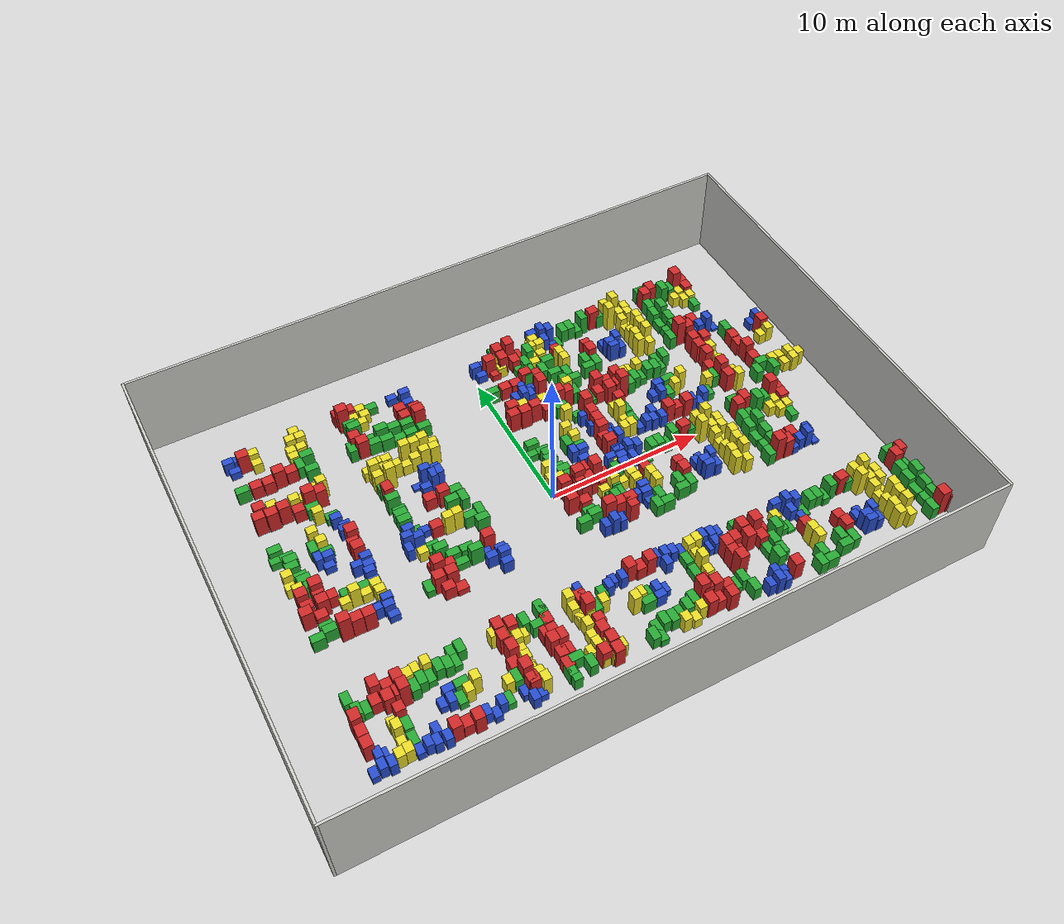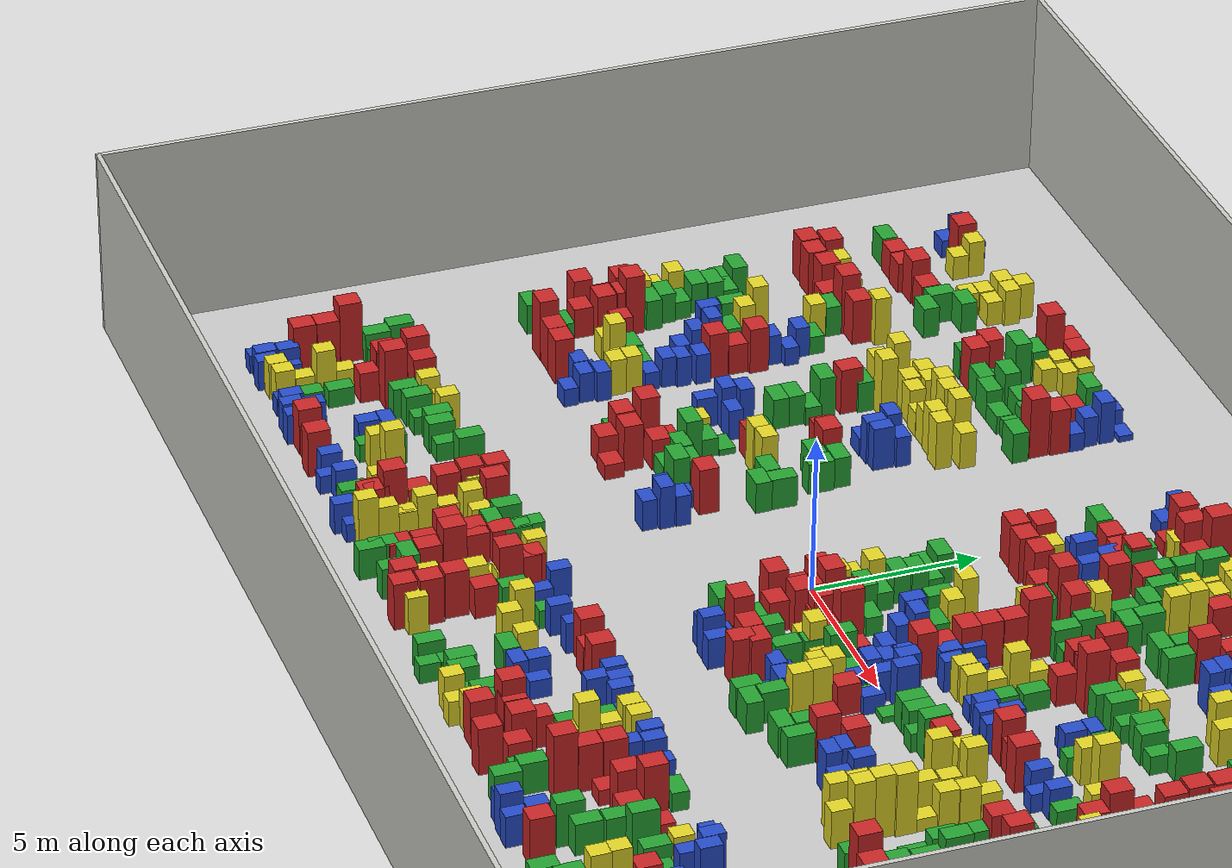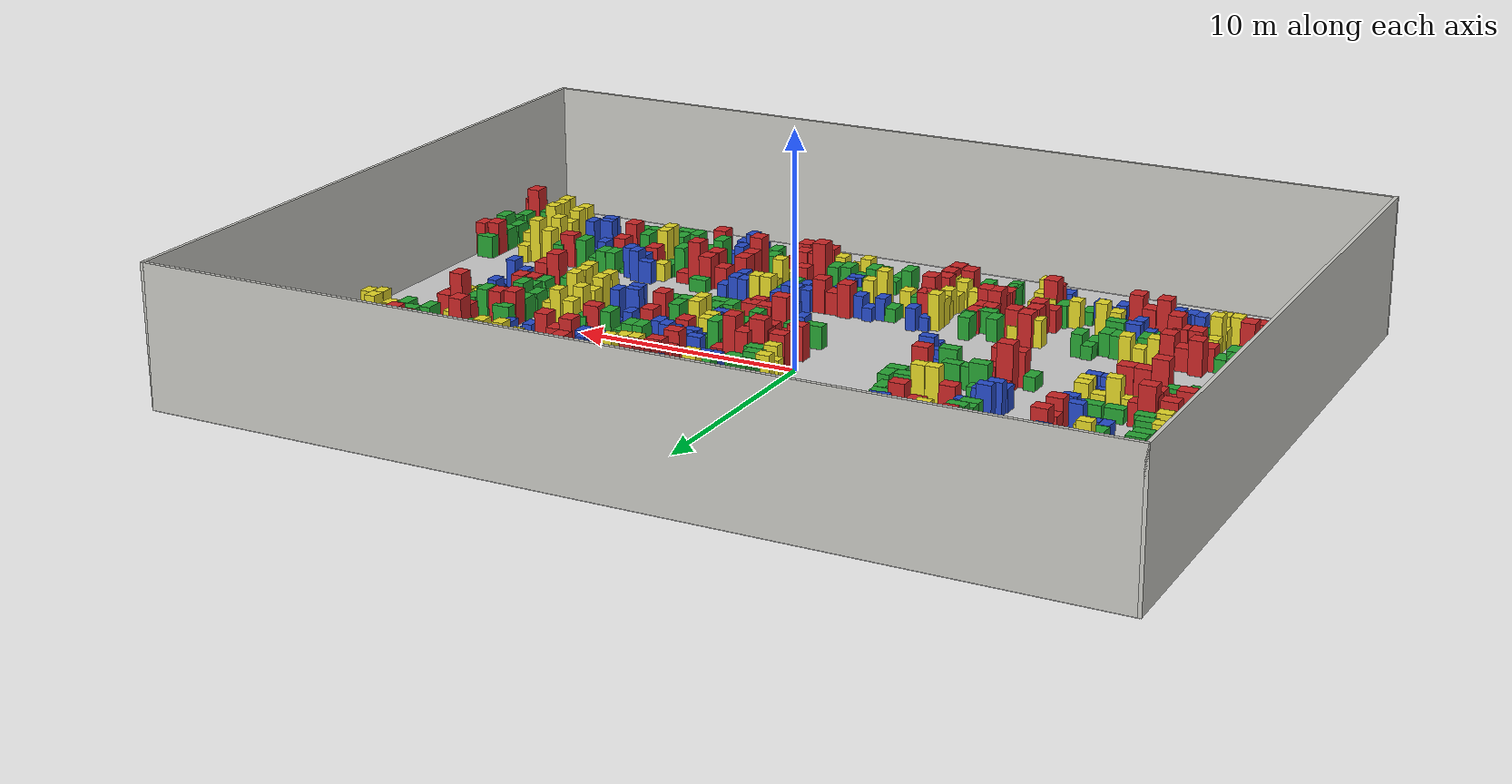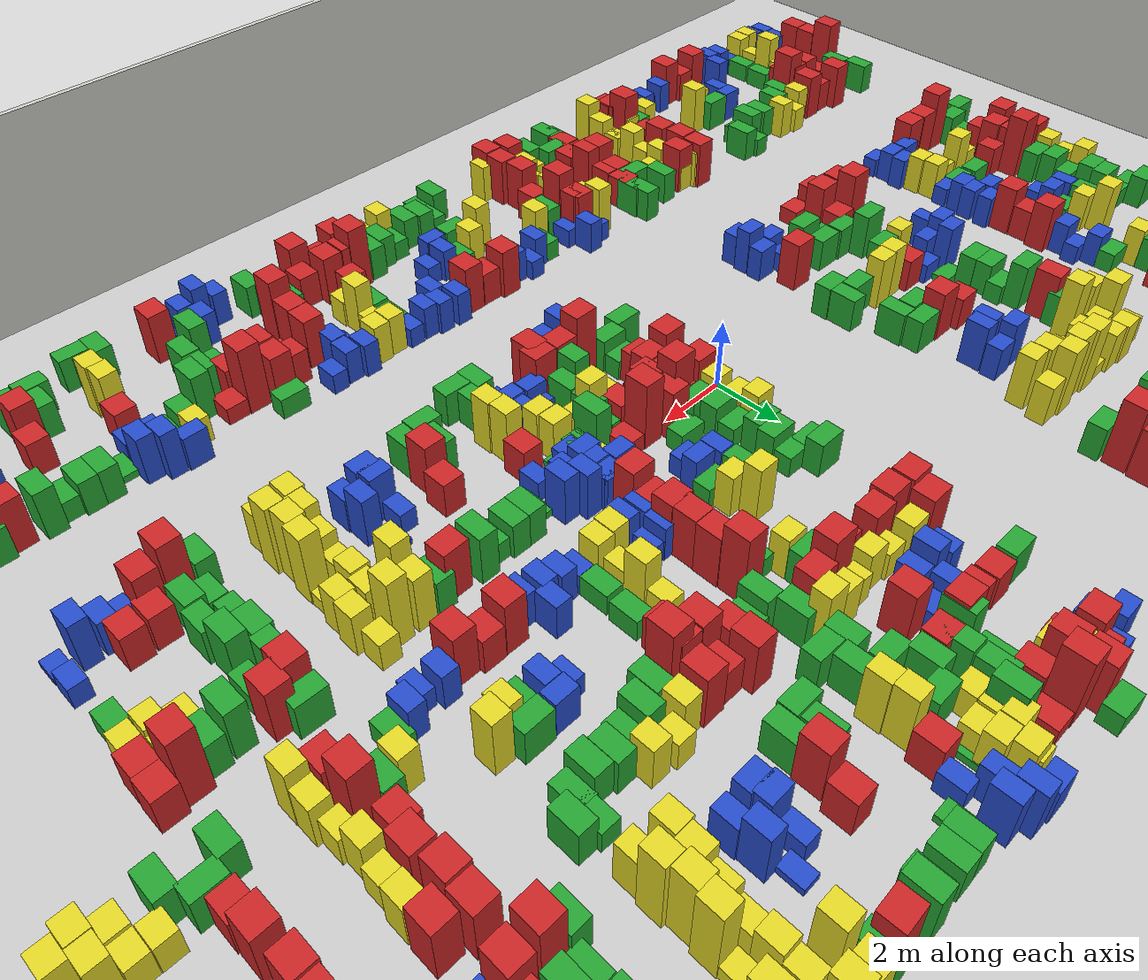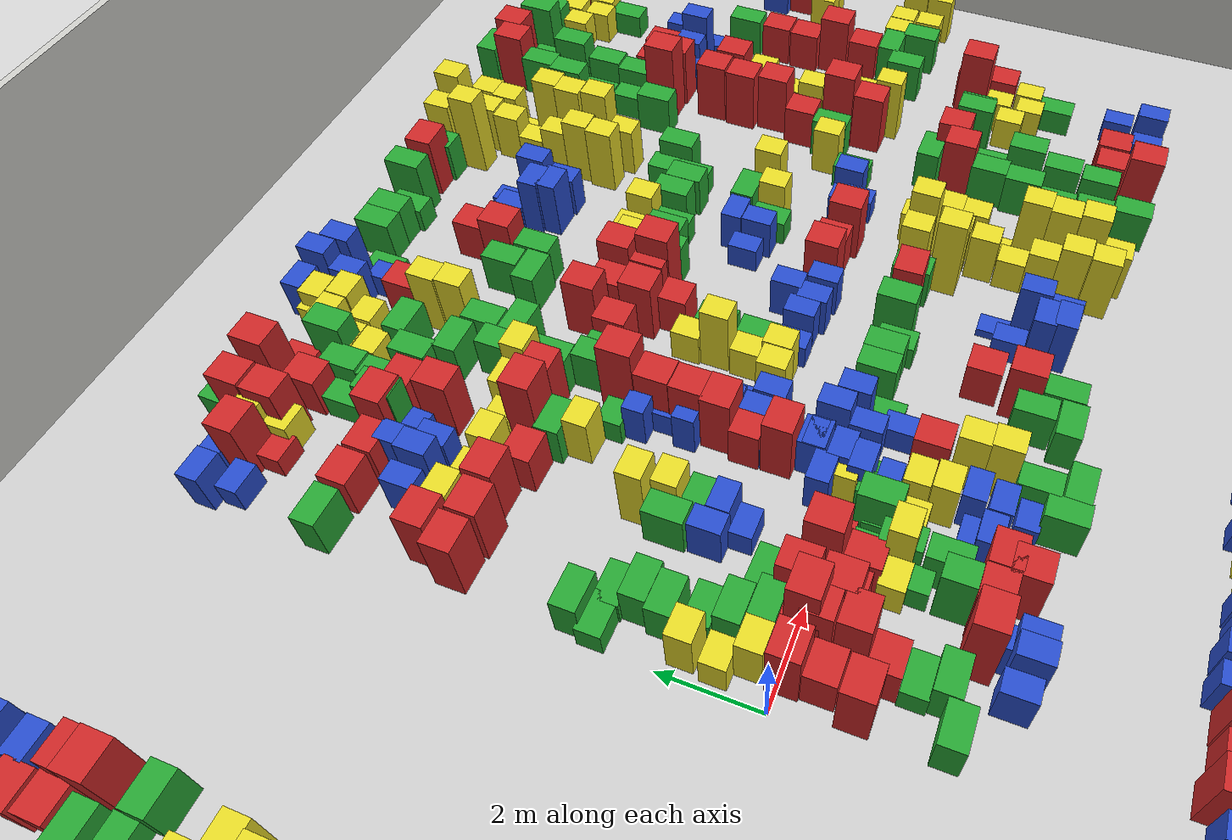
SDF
<?xml version="1.0" ?>
<sdf version="1.6">
  <world name="default">
    <include>
      <uri>model://sun</uri>
    </include>
    <include>
      <uri>model://factory_floor</uri>
    </include>
    <include>
      <uri>model://factory_outer_frame</uri>
    </include>
    <include>
      <uri>model://baggage_group_A</uri>
      <pose>0 0 0 0 0 0</pose>
    </include>
    <include>
      <uri>model://baggage_group_B</uri>
      <pose>0 0 0 0 0 0</pose>
    </include>
    <include>
      <uri>model://baggage_group_A</uri>
      <pose>16.4785 0 0 0 0 0</pose>
    </include>
    <include>
      <uri>model://baggage_group_B</uri>
      <pose>4.6868 2.7612 0 0 0 -1.57</pose>
    </include>
    <include>
      <uri>model://baggage_group_B</uri>
      <pose>4.7830 -8.4001 0 0 0 -1.57</pose>
    </include>
    <include>
      <uri>model://baggage_group_A</uri>
      <pose>-13.0905 -22.9885 0 0 0 -1.57</pose>
    </include>
    <include>
      <uri>model://baggage_group_A</uri>
      <pose>3.7331 4.6536 0 0 0 1.57</pose>
    </include>
    <include>
      <uri>model://baggage_group_A</uri>
      <pose>7.8453 -9.7033 0 0 0 -1.57</pose>
    </include>
    <include>
      <uri>model://baggage_group_B</uri>
      <pose>10.7910 -16.2892 0 0 0 -1.57</pose>
    </include>
  </world>
</sdf>

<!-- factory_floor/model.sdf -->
<sdf version="1.4">
   <model name="factory_floor">
      <static>true</static>
      <link name="link">
         <collision name="collision">
            <geometry>
               <plane>
                  <normal>0 0 1</normal>
                  <size>40 30</size>
               </plane>
            </geometry>
            <surface>
               <friction>
                  <ode>
                     <mu>100</mu>
                     <mu2>50</mu2>
                  </ode>
               </friction>
            </surface>
         </collision>
         <visual name="visual">
            <cast_shadows>false</cast_shadows>
            <geometry>
               <plane>
                  <normal>0 0 1</normal>
                  <size>40 30</size>
               </plane>
            </geometry>
            <material>
               <script>
                  <uri>model://factory_floor/materials/scripts/factory_floor.material</uri>
                  <name>FactoryFloor/Image</name>
               </script>
            </material>
         </visual>
      </link>
   </model>
</sdf>

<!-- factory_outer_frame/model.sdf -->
<sdf version='1.6'>
  <model name='factory_outer_frame'>
    <pose frame=''>0 0 0 0 -0 0</pose>
    <link name='Wall_0'>
      <collision name='Wall_0_Collision'>
        <geometry>
          <box>
            <size>30.15 0.15 6</size>
          </box>
        </geometry>
        <pose frame=''>0 0 3 0 -0 0</pose>
      </collision>
      <visual name='Wall_0_Visual'>
        <cast_shadows>false</cast_shadows>
        <pose frame=''>0 0 3 0 -0 0</pose>
        <geometry>
          <box>
            <size>30.15 0.15 6</size>
          </box>
        </geometry>
        <material>
          <script>
            <uri>file://media/materials/scripts/gazebo.material</uri>
            <name>Gazebo/CeilingTiled</name>
          </script>
          <ambient>1 1 1 1</ambient>
        </material>
      </visual>
      <pose frame=''>20 0 0 0 0 -1.5708</pose>
    </link>
    <link name='Wall_1'>
      <collision name='Wall_1_Collision'>
        <geometry>
          <box>
            <size>40.15 0.15 6</size>
          </box>
        </geometry>
        <pose frame=''>0 0 3 0 -0 0</pose>
      </collision>
      <visual name='Wall_1_Visual'>
        <cast_shadows>false</cast_shadows>
        <pose frame=''>0 0 3 0 -0 0</pose>
        <geometry>
          <box>
            <size>40.15 0.15 6</size>
          </box>
        </geometry>
        <material>
          <script>
            <uri>file://media/materials/scripts/gazebo.material</uri>
            <name>Gazebo/CeilingTiled</name>
          </script>
          <ambient>1 1 1 1</ambient>
        </material>
      </visual>
      <pose frame=''>0 -15 0 0 -0 3.14159</pose>
    </link>
    <link name='Wall_2'>
      <collision name='Wall_2_Collision'>
        <geometry>
          <box>
            <size>30.15 0.15 6</size>
          </box>
        </geometry>
        <pose frame=''>0 0 3 0 -0 0</pose>
      </collision>
      <visual name='Wall_2_Visual'>
        <cast_shadows>false</cast_shadows>
        <pose frame=''>0 0 3 0 -0 0</pose>
        <geometry>
          <box>
            <size>30.15 0.15 6</size>
          </box>
        </geometry>
        <material>
          <script>
            <uri>file://media/materials/scripts/gazebo.material</uri>
            <name>Gazebo/CeilingTiled</name>
          </script>
          <ambient>1 1 1 1</ambient>
        </material>
      </visual>
      <pose frame=''>-20 0 0 0 -0 1.5708</pose>
    </link>
    <link name='Wall_3'>
      <collision name='Wall_3_Collision'>
        <geometry>
          <box>
            <size>40.15 0.15 6</size>
          </box>
        </geometry>
        <pose frame=''>0 0 3 0 -0 0</pose>
      </collision>
      <visual name='Wall_3_Visual'>
        <cast_shadows>false</cast_shadows>
        <pose frame=''>0 0 3 0 -0 0</pose>
        <geometry>
          <box>
            <size>40.15 0.15 6</size>
          </box>
        </geometry>
        <material>
          <script>
            <uri>file://media/materials/scripts/gazebo.material</uri>
            <name>Gazebo/CeilingTiled</name>
          </script>
          <ambient>1 1 1 1</ambient>
        </material>
      </visual>
      <pose frame=''>0 15 0 0 -0 0</pose>
    </link>
    <static>1</static>
  </model>
</sdf>

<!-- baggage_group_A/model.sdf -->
<sdf version="1.4">
  <model name="baggage_group_A">
    <model name="baggage_D_1.0_0">
      <include>
        <uri>model://baggage_D_1.0</uri>
        <pose>-15.952773 -2.921897 0.5 0 0 0</pose>
      </include>
    </model>
    <model name="baggage_D_1.0_1">
      <include>
        <uri>model://baggage_D_1.0</uri>
        <pose>-15.140800 -2.659260 0.5 0 0 0</pose>
      </include>
    </model>
    <model name="baggage_D_0.6_0">
      <include>
        <uri>model://baggage_D_0.6</uri>
        <pose>-15.197688 -2.173482 0.3 0 0 0</pose>
      </include>
    </model>
    <model name="baggage_A_2.0_0">
      <include>
        <uri>model://baggage_A_2.0</uri>
        <pose>-14.3888 -2.985664 1.0 0 0 0</pose>
      </include>
    </model>
    <model name="baggage_A_1.5_0">
      <include>
        <uri>model://baggage_A_1.5</uri>
        <pose>-13.6814 -2.97255 0.75 0 0 0</pose>
      </include>
    </model>
    <model name="baggage_A_1.5_1">
      <include>
        <uri>model://baggage_A_1.5</uri>
        <pose>-12.9672 -2.99066 0.75 0 0 0</pose>
      </include>
    </model>
    <model name="baggage_B_0.6_0">
      <include>
        <uri>model://baggage_B_0.6</uri>
        <pose>-11.6581 -3.23288 0.3 0 0 0</pose>
      </include>
    </model>
    <model name="baggage_B_1.0_0">
      <include>
        <uri>model://baggage_B_1.0</uri>
        <pose>-11.7207 -2.7222 0.5 0 0 0</pose>
      </include>
    </model>
    <model name="baggage_B_1.0_1">
      <include>
        <uri>model://baggage_B_1.0</uri>
        <pose>-12.3958 -2.65895 0.5 0 0 0</pose>
      </include>
    </model>
    <model name="baggage_A_1.5_2">
      <include>
        <uri>model://baggage_A_1.5</uri>
        <pose>-15.9557 -1.37192 0.75 0 0 0</pose>
      </include>
    </model>
    <model name="baggage_A_1.0_0">
      <include>
        <uri>model://baggage_A_1.0</uri>
        <pose>-15.7141 -0.71732 0.5 0 0 0</pose>
      </include>
    </model>
    <model name="baggage_A_1.5_3">
      <include>
        <uri>model://baggage_A_1.5</uri>
        <pose>-15.7621 -0.111141 0.75 0 0 0</pose>
      </include>
    </model>
    <model name="baggage_A_1.5_4">
      <include>
        <uri>model://baggage_A_1.5</uri>
        <pose>-14.902 -0.36223 0.75 0 0 0</pose>
      </include>
    </model>
    <model name="baggage_A_1.5_5">
      <include>
        <uri>model://baggage_A_1.5</uri>
        <pose>-14.8854 -0.995082 0.75 0 0 0</pose>
      </include>
    </model>
    <model name="baggage_A_1.0_1">
      <include>
        <uri>model://baggage_A_1.0</uri>
        <pose>-15.2121 -1.62004 0.5 0 0 0</pose>
      </include>
    </model>
    <model name="baggage_A_2.0_1">
      <include>
        <uri>model://baggage_A_2.0</uri>
        <pose>-14.8718 -0.108549 1.0 0 0 0</pose>
      </include>
    </model>
    <model name="baggage_A_1.0_2">
      <include>
        <uri>model://baggage_A_1.0</uri>
        <pose>-14.2882 -0.683416 0.5 0 0 0</pose>
      </include>
    </model>
    <model name="baggage_B_0.6_1">
      <include>
        <uri>model://baggage_B_0.6</uri>
        <pose>-12.3653 -2.347 0.3 0 0 0</pose>
      </include>
    </model>
    <model name="baggage_B_1.0_2">
      <include>
        <uri>model://baggage_B_1.0</uri>
        <pose>-11.6217 -2.22105 0.5 0 0 0</pose>
      </include>
    </model>
    <model name="baggage_C_1.2_0">
      <include>
        <uri>model://baggage_C_1.2</uri>
        <pose>-11.7735 -1.71632 0.6 0 0 0</pose>
      </include>
    </model>
    <model name="baggage_C_1.2_1">
      <include>
        <uri>model://baggage_C_1.2</uri>
        <pose>-11.8281 -1.20127 0.6 0 0 0</pose>
      </include>
    </model>
    <model name="baggage_C_0.8_0">
      <include>
        <uri>model://baggage_C_0.8</uri>
        <pose>-12.4698 -1.30971 0.4 0 0 0</pose>
      </include>
    </model>
    <model name="baggage_C_1.6_0">
      <include>
        <uri>model://baggage_C_1.6</uri>
        <pose>-13.1083 -1.26847 0.8 0 0 0</pose>
      </include>
    </model>
    <model name="baggage_C_0.8_1">
      <include>
        <uri>model://baggage_C_0.8</uri>
        <pose>-13.721 -1.31855 0.4 0 0 0</pose>
      </include>
    </model>
    <model name="baggage_C_1.2_2">
      <include>
        <uri>model://baggage_C_1.2</uri>
        <pose>-15.7532 0.485614 0.6 0 0 0</pose>
      </include>
    </model>
    <model name="baggage_D_1.0_2">
      <include>
        <uri>model://baggage_D_1.0</uri>
        <pose>-14.9923 0.523276 0.5 0 0 0</pose>
      </include>
    </model>
    <model name="baggage_B_0.6_2">
      <include>
        <uri>model://baggage_B_0.6</uri>
        <pose>-11.732 -0.670798 0.3 0 0 0</pose>
      </include>
    </model>
    <model name="baggage_B_1.0_3">
      <include>
        <uri>model://baggage_B_1.0</uri>
        <pose>-11.7456 -0.151198 0.5 0 0 0</pose>
      </include>
    </model>
    <model name="baggage_B_1.0_4">
      <include>
        <uri>model://baggage_B_1.0</uri>
        <pose>-11.6263 0.282143 0.5 0 0 0</pose>
      </include>
    </model>
    <model name="baggage_D_0.6_1">
      <include>
        <uri>model://baggage_D_0.6</uri>
        <pose>-12.466 -0.703041 0.3 0 0 0</pose>
      </include>
    </model>
    <model name="baggage_D_0.6_2">
      <include>
        <uri>model://baggage_D_0.6</uri>
        <pose>-13.376 -0.65813 0.3 0 0 0</pose>
      </include>
    </model>
    <model name="baggage_B_1.0_5">
      <include>
        <uri>model://baggage_B_1.0</uri>
        <pose>-12.2401 0.487142 0.5 0 0 0</pose>
      </include>
    </model>
    <model name="baggage_B_1.0_6">
      <include>
        <uri>model://baggage_B_1.0</uri>
        <pose>-11.5805 0.867645 0.5 0 0 0</pose>
      </include>
    </model>
    <model name="baggage_D_1.0_3">
      <include>
        <uri>model://baggage_D_1.0</uri>
        <pose>-15.2186 1.03486 0.5 0 0 0</pose>
      </include>
    </model>
    <model name="baggage_D_0.6_3">
      <include>
        <uri>model://baggage_D_0.6</uri>
        <pose>-15.2862 1.55706 0.3 0 0 0</pose>
      </include>
    </model>
    <model name="baggage_C_0.8_2">
      <include>
        <uri>model://baggage_C_0.8</uri>
        <pose>-16.0562 0.989731 0.4 0 0 0</pose>
      </include>
    </model>
    <model name="baggage_C_1.2_3">
      <include>
        <uri>model://baggage_C_1.2</uri>
        <pose>-15.9802 1.60915 0.6 0 0 0</pose>
      </include>
    </model>
    <model name="baggage_B_0.6_3">
      <include>
        <uri>model://baggage_B_0.6</uri>
        <pose>-13.555022 1.446875 0.3 0 0 0</pose>
      </include>
    </model>
    <model name="baggage_B_1.0_7">
      <include>
        <uri>model://baggage_B_1.0</uri>
        <pose>-13.4176 1.92528 0.5 0 0 0</pose>
      </include>
    </model>
    <model name="baggage_B_1.0_8">
      <include>
        <uri>model://baggage_B_1.0</uri>
        <pose>-13.982483 2.001436 0.5 0 0 1.57</pose>
      </include>
    </model>
    <model name="baggage_A_1.5_6">
      <include>
        <uri>model://baggage_A_1.5</uri>
        <pose>-11.7805 1.41002 0.75 0 0 0</pose>
      </include>
    </model>
    <model name="baggage_A_1.0_3">
      <include>
        <uri>model://baggage_A_1.0</uri>
        <pose>-11.796 2.03958 0.5 0 0 0</pose>
      </include>
    </model>
    <model name="baggage_D_0.6_4">
      <include>
        <uri>model://baggage_D_0.6</uri>
        <pose>-13.3434 2.44958 0.3 0 0 0</pose>
      </include>
    </model>
    <model name="baggage_D_1.0_4">
      <include>
        <uri>model://baggage_D_1.0</uri>
        <pose>-13.999511 2.769431 0.5 0 0 -1.57</pose>
      </include>
    </model>
    <model name="baggage_A_1.5_7">
      <include>
        <uri>model://baggage_A_1.5</uri>
        <pose>-11.6674 2.65733 0.75 0 0 0</pose>
      </include>
    </model>
    <model name="baggage_C_1.2_4">
      <include>
        <uri>model://baggage_C_1.2</uri>
        <pose>-13.4172 2.94838 0.6 0 0 0</pose>
      </include>
    </model>
    <model name="baggage_D_1.0_5">
      <include>
        <uri>model://baggage_D_1.0</uri>
        <pose>-15.5016 2.13917 0.5 0 0 0</pose>
      </include>
    </model>
    <model name="baggage_D_1.0_6">
      <include>
        <uri>model://baggage_D_1.0</uri>
        <pose>-15.399 2.6424 0.5 0 0 0</pose>
      </include>
    </model>
    <model name="baggage_A_1.5_8">
      <include>
        <uri>model://baggage_A_1.5</uri>
        <pose>-15.760444 6.594052 0.75 0 0 0</pose>
      </include>
    </model>
    <model name="baggage_B_1.0_9">
      <include>
        <uri>model://baggage_B_1.0</uri>
        <pose>-11.8901 3.21914 0.5 0 0 0</pose>
      </include>
    </model>
    <model name="baggage_B_0.6_4">
      <include>
        <uri>model://baggage_B_0.6</uri>
        <pose>-11.6939 3.71424 0.3 0 0 0</pose>
      </include>
    </model>
    <model name="baggage_B_1.0_10">
      <include>
        <uri>model://baggage_B_1.0</uri>
        <pose>-12.0327 4.17077 0.5 0 0 0</pose>
      </include>
    </model>
    <model name="baggage_C_1.2_5">
      <include>
        <uri>model://baggage_C_1.2</uri>
        <pose>-12.830246 4.97338 0.6 0 0 0</pose>
      </include>
    </model>
    <model name="baggage_D_0.6_5">
      <include>
        <uri>model://baggage_D_0.6</uri>
        <pose>-12.122494 4.624811 0.3 0 0 0</pose>
      </include>
    </model>
    <model name="baggage_D_1.0_7">
      <include>
        <uri>model://baggage_D_1.0</uri>
        <pose>-12.929233 5.483276 0.5 0 0 0</pose>
      </include>
    </model>
    <model name="baggage_C_1.6_1">
      <include>
        <uri>model://baggage_C_1.6</uri>
        <pose>-13.708101 3.470206 0.8 0 0 0</pose>
      </include>
    </model>
    <model name="baggage_B_0.6_5">
      <include>
        <uri>model://baggage_B_0.6</uri>
        <pose>-15.5356 11.2582 0.3 0 0 0</pose>
      </include>
    </model>
    <model name="baggage_B_1.0_11">
      <include>
        <uri>model://baggage_B_1.0</uri>
        <pose>-16.1787 10.9888 0.5 0 0 0</pose>
      </include>
    </model>
    <model name="baggage_B_0.6_6">
      <include>
        <uri>model://baggage_B_0.6</uri>
        <pose>-15.982618 10.468168 0.3 0 0 0</pose>
      </include>
    </model>
    <model name="baggage_D_1.0_8">
      <include>
        <uri>model://baggage_D_1.0</uri>
        <pose>-16.134039 8.550429 0.5 0 0 0</pose>
      </include>
    </model>
    <model name="baggage_A_1.5_9">
      <include>
        <uri>model://baggage_A_1.5</uri>
        <pose>-15.2946 10.7566 0.75 0 0 0</pose>
      </include>
    </model>
    <model name="baggage_C_1.2_6">
      <include>
        <uri>model://baggage_C_1.2</uri>
        <pose>-14.6437 10.8336 0.6 0 0 0</pose>
      </include>
    </model>
    <model name="baggage_C_0.8_3">
      <include>
        <uri>model://baggage_C_0.8</uri>
        <pose>-14.6345 10.3232 0.4 0 0 0</pose>
      </include>
    </model>
    <model name="baggage_C_1.2_7">
      <include>
        <uri>model://baggage_C_1.2</uri>
        <pose>-11.8892 11.2923 0.6 0 0 0</pose>
      </include>
    </model>
    <model name="baggage_D_1.0_9">
      <include>
        <uri>model://baggage_D_1.0</uri>
        <pose>-11.8235 9.39654 0.5 0 0 0</pose>
      </include>
    </model>
    <model name="baggage_C_1.2_8">
      <include>
        <uri>model://baggage_C_1.2</uri>
        <pose>-11.6823 10.7803 0.6 0 0 0</pose>
      </include>
    </model>
    <model name="baggage_C_0.8_4">
      <include>
        <uri>model://baggage_C_0.8</uri>
        <pose>-11.8284 10.2777 0.4 0 0 0</pose>
      </include>
    </model>
    <model name="baggage_C_1.2_9">
      <include>
        <uri>model://baggage_C_1.2</uri>
        <pose>-12.2968 10.7942 0.6 0 0 0</pose>
      </include>
    </model>
    <model name="baggage_C_0.8_5">
      <include>
        <uri>model://baggage_C_0.8</uri>
        <pose>-12.4871 10.2856 0.4 0 0 0</pose>
      </include>
    </model>
    <model name="baggage_C_0.8_6">
      <include>
        <uri>model://baggage_C_0.8</uri>
        <pose>-12.4953 9.77218 0.4 0 0 0</pose>
      </include>
    </model>
    <model name="baggage_A_1.0_4">
      <include>
        <uri>model://baggage_A_1.0</uri>
        <pose>-14.5414 8.51247 0.5 0 0 0</pose>
      </include>
    </model>
    <model name="baggage_A_1.5_10">
      <include>
        <uri>model://baggage_A_1.5</uri>
        <pose>-13.8096 8.64829 0.75 0 0 0</pose>
      </include>
    </model>
    <model name="baggage_A_1.0_5">
      <include>
        <uri>model://baggage_A_1.0</uri>
        <pose>-13.0667 8.67794 0.5 0 0 0</pose>
      </include>
    </model>
    <model name="baggage_D_1.0_10">
      <include>
        <uri>model://baggage_D_1.0</uri>
        <pose>-12.428078 8.832895 0.5 0 0 -1.57</pose>
      </include>
    </model>
    <model name="baggage_D_1.0_11">
      <include>
        <uri>model://baggage_D_1.0</uri>
        <pose>-11.9091 8.21599 0.5 0 0 0</pose>
      </include>
    </model>
    <model name="baggage_A_1.5_11">
      <include>
        <uri>model://baggage_A_1.5</uri>
        <pose>-15.2514 5.87077 0.75 0 0 0</pose>
      </include>
    </model>
    <model name="baggage_A_1.5_12">
      <include>
        <uri>model://baggage_A_1.5</uri>
        <pose>-14.486 5.99908 0.75 0 0 0</pose>
      </include>
    </model>
    <model name="baggage_A_1.0_6">
      <include>
        <uri>model://baggage_A_1.0</uri>
        <pose>-13.7115 5.72892 0.5 0 0 0</pose>
      </include>
    </model>
    <model name="baggage_A_2.0_2">
      <include>
        <uri>model://baggage_A_2.0</uri>
        <pose>-12.8917 6.0254 1.0 0 0 0</pose>
      </include>
    </model>
    <model name="baggage_A_1.5_13">
      <include>
        <uri>model://baggage_A_1.5</uri>
        <pose>-12.200442 6.120517 0.75 0 0 0</pose>
      </include>
    </model>
    <model name="baggage_D_0.6_6">
      <include>
        <uri>model://baggage_D_0.6</uri>
        <pose>-16.0868 3.16804 0.3 0 0 0</pose>
      </include>
    </model>
    <model name="baggage_D_0.6_7">
      <include>
        <uri>model://baggage_D_0.6</uri>
        <pose>-15.4684 3.13344 0.3 0 0 0</pose>
      </include>
    </model>
    <model name="baggage_D_1.0_12">
      <include>
        <uri>model://baggage_D_1.0</uri>
        <pose>-15.9791 3.62983 0.5 0 0 0</pose>
      </include>
    </model>
    <model name="baggage_A_1.5_14">
      <include>
        <uri>model://baggage_A_1.5</uri>
        <pose>-16.0040 5.924286 0.75 0 0 0</pose>
      </include>
    </model>
    <model name="baggage_C_1.2_10">
      <include>
        <uri>model://baggage_C_1.2</uri>
        <pose>-15.0236 6.62739 0.6 0 0 0</pose>
      </include>
    </model>
    <model name="baggage_C_0.8_7">
      <include>
        <uri>model://baggage_C_0.8</uri>
        <pose>-14.3387 6.54913 0.4 0 0 0</pose>
      </include>
    </model>
    <model name="baggage_C_1.2_11">
      <include>
        <uri>model://baggage_C_1.2</uri>
        <pose>-13.7053 6.46809 0.6 0 0 0</pose>
      </include>
    </model>
    <model name="baggage_C_0.8_8">
      <include>
        <uri>model://baggage_C_0.8</uri>
        <pose>-13.0994 6.55326 0.4 0 0 0</pose>
      </include>
    </model>
    <model name="baggage_C_1.2_12">
      <include>
        <uri>model://baggage_C_1.2</uri>
        <pose>-12.497204 6.674532 0.6 0 0 0</pose>
      </include>
    </model>
    <model name="baggage_C_1.6_2">
      <include>
        <uri>model://baggage_C_1.6</uri>
        <pose>-11.89386 6.684864 0.8 0 0 0</pose>
      </include>
    </model>
    <model name="baggage_A_1.0_7">
      <include>
        <uri>model://baggage_A_1.0</uri>
        <pose>-15.287872 8.553086 0.5 0 0 0</pose>
      </include>
    </model>
  </model>
</sdf>

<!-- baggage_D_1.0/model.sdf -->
<sdf version='1.4'>
  <model name="baggage_D_1.0">
      <static>true</static>
      <link name="link">
         <collision name="collision">
            <geometry>
               <box>
                  <size>0.8 0.5 1.0</size>
               </box>
            </geometry>
         </collision>
         <visual name="visual">
            <cast_shadows>false</cast_shadows>
            <geometry>
               <box>
                  <size>0.8 0.5 1.0</size>
               </box>
            </geometry>
            <material>
               <script>
                  <uri>file://media/materials/scripts/gazebo.material</uri>
                  <name>Gazebo/Green</name>
               </script>
            </material>
         </visual>
      </link>
  </model>
</sdf>

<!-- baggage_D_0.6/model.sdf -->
<sdf version='1.4'>
  <model name="baggage_D_0.6">
      <static>true</static>
      <link name="link">
         <collision name="collision">
            <geometry>
               <box>
                  <size>0.8 0.5 0.6</size>
               </box>
            </geometry>
         </collision>
         <visual name="visual">
            <cast_shadows>false</cast_shadows>
            <geometry>
               <box>
                  <size>0.8 0.5 0.6</size>
               </box>
            </geometry>
            <material>
               <script>
                  <uri>file://media/materials/scripts/gazebo.material</uri>
                  <name>Gazebo/Green</name>
               </script>
            </material>
         </visual>
      </link>
  </model>
</sdf>

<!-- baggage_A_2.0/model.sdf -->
<sdf version='1.4'>
  <model name="baggage_A_2.0">
      <static>true</static>
      <link name="link">
         <collision name="collision">
            <geometry>
               <box>
                  <size>0.7 0.6 2.0</size>
               </box>
            </geometry>
         </collision>
         <visual name="visual">
            <cast_shadows>false</cast_shadows>
            <geometry>
               <box>
                  <size>0.7 0.6 2.0</size>
               </box>
            </geometry>
            <material>
               <script>
                  <uri>file://media/materials/scripts/gazebo.material</uri>
                  <name>Gazebo/Red</name>
               </script>
            </material>
         </visual>
      </link>
  </model>
</sdf>

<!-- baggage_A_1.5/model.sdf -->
<sdf version='1.4'>
  <model name="baggage_A_1.5">
      <static>true</static>
      <link name="link">
         <collision name="collision">
            <geometry>
               <box>
                  <size>0.7 0.6 1.5</size>
               </box>
            </geometry>
         </collision>
         <visual name="visual">
            <cast_shadows>false</cast_shadows>
            <geometry>
               <box>
                  <size>0.7 0.6 1.5</size>
               </box>
            </geometry>
            <material>
               <script>
                  <uri>file://media/materials/scripts/gazebo.material</uri>
                  <name>Gazebo/Red</name>
               </script>
            </material>
         </visual>
      </link>
  </model>
</sdf>

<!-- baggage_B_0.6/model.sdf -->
<sdf version='1.4'>
  <model name="baggage_B_0.6">
      <static>true</static>
      <link name="link">
         <collision name="collision">
            <geometry>
               <box>
                  <size>0.65 0.45 0.6</size>
               </box>
            </geometry>
         </collision>
         <visual name="visual">
            <cast_shadows>false</cast_shadows>
            <geometry>
               <box>
                  <size>0.65 0.45 0.6</size>
               </box>
            </geometry>
            <material>
               <script>
                  <uri>file://media/materials/scripts/gazebo.material</uri>
                  <name>Gazebo/Blue</name>
               </script>
            </material>
         </visual>
      </link>
  </model>
</sdf>

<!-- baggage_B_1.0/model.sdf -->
<sdf version='1.4'>
  <model name="baggage_B_1.0">
      <static>true</static>
      <link name="link">
         <collision name="collision">
            <geometry>
               <box>
                  <size>0.65 0.45 1.0</size>
               </box>
            </geometry>
         </collision>
         <visual name="visual">
            <cast_shadows>false</cast_shadows>
            <geometry>
               <box>
                  <size>0.65 0.45 1.0</size>
               </box>
            </geometry>
            <material>
               <script>
                  <uri>file://media/materials/scripts/gazebo.material</uri>
                  <name>Gazebo/Blue</name>
               </script>
            </material>
         </visual>
      </link>
  </model>
</sdf>

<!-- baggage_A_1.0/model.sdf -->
<sdf version='1.4'>
  <model name="baggage_A_1.0">
      <static>true</static>
      <link name="link">
         <collision name="collision">
            <geometry>
               <box>
                  <size>0.7 0.6 1.0</size>
               </box>
            </geometry>
         </collision>
         <visual name="visual">
            <cast_shadows>false</cast_shadows>
            <geometry>
               <box>
                  <size>0.7 0.6 1.0</size>
               </box>
            </geometry>
            <material>
               <script>
                  <uri>file://media/materials/scripts/gazebo.material</uri>
                  <name>Gazebo/Red</name>
               </script>
            </material>
         </visual>
      </link>
  </model>
</sdf>

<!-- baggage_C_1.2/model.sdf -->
<sdf version='1.4'>
  <model name="baggage_C_1.2">
      <static>true</static>
      <link name="link">
         <collision name="collision">
            <geometry>
               <box>
                  <size>0.6 0.5 1.2</size>
               </box>
            </geometry>
         </collision>
         <visual name="visual">
            <cast_shadows>false</cast_shadows>
            <geometry>
               <box>
                  <size>0.6 0.5 1.2</size>
               </box>
            </geometry>
            <material>
               <script>
                  <uri>file://media/materials/scripts/gazebo.material</uri>
                  <name>Gazebo/Yellow</name>
               </script>
            </material>
         </visual>
      </link>
  </model>
</sdf>

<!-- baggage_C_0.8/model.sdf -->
<sdf version='1.4'>
  <model name="baggage_C_0.8">
      <static>true</static>
      <link name="link">
         <collision name="collision">
            <geometry>
               <box>
                  <size>0.6 0.5 0.8</size>
               </box>
            </geometry>
         </collision>
         <visual name="visual">
            <cast_shadows>false</cast_shadows>
            <geometry>
               <box>
                  <size>0.6 0.5 0.8</size>
               </box>
            </geometry>
            <material>
               <script>
                  <uri>file://media/materials/scripts/gazebo.material</uri>
                  <name>Gazebo/Yellow</name>
               </script>
            </material>
         </visual>
      </link>
  </model>
</sdf>

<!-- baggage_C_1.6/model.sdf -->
<sdf version='1.4'>
  <model name="baggage_C_1.6">
      <static>true</static>
      <link name="link">
         <collision name="collision">
            <geometry>
               <box>
                  <size>0.6 0.5 1.6</size>
               </box>
            </geometry>
         </collision>
         <visual name="visual">
            <cast_shadows>false</cast_shadows>
            <geometry>
               <box>
                  <size>0.6 0.5 1.6</size>
               </box>
            </geometry>
            <material>
               <script>
                  <uri>file://media/materials/scripts/gazebo.material</uri>
                  <name>Gazebo/Yellow</name>
               </script>
            </material>
         </visual>
      </link>
  </model>
</sdf>

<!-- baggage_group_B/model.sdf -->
<sdf version="1.4">
  <model name="baggage_group_B">
    <model name="baggage_C_0.8_0">
        <include>
            <uri>model://baggage_C_0.8</uri>
            <pose>-9.02288 6.55759 0.4 0 0 0</pose>
        </include>
    </model>
    <model name="baggage_C_1.2_0">
        <include>
            <uri>model://baggage_C_1.2</uri>
            <pose>-8.35452 6.69065 0.6 0 0 0</pose>
        </include>
    </model>
    <model name="baggage_C_1.2_1">
        <include>
            <uri>model://baggage_C_1.2</uri>
            <pose>-7.78261 6.6353 0.6 0 0 0</pose>
        </include>
    </model>
    <model name="baggage_C_0.4_0">
        <include>
            <uri>model://baggage_C_0.4</uri>
            <pose>-7.18453 6.53717 0.2 0 0 0</pose>
        </include>
    </model>
    <model name="baggage_C_2.0_0">
        <include>
            <uri>model://baggage_C_2.0</uri>
            <pose>-6.59003 6.55894 1.0 0 0 0</pose>
        </include>
    </model>
    <model name="baggage_C_2.0_1">
        <include>
            <uri>model://baggage_C_2.0</uri>
            <pose>-5.99498 6.47714 1.0 0 0 0</pose>
        </include>
    </model>
    <model name="baggage_C_2.0_2">
        <include>
            <uri>model://baggage_C_2.0</uri>
            <pose>-5.38391 6.57727 1.0 0 0 0</pose>
        </include>
    </model>
    <model name="baggage_C_1.2_2">
        <include>
            <uri>model://baggage_C_1.2</uri>
            <pose>-4.77245 6.51191 0.6 0 0 0</pose>
        </include>
    </model>
    <model name="baggage_A_1.5_0">
        <include>
            <uri>model://baggage_A_1.5</uri>
            <pose>-8.61221 -2.63519 0.75 0 0 0</pose>
        </include>
    </model>
    <model name="baggage_A_2.0_0">
        <include>
            <uri>model://baggage_A_2.0</uri>
            <pose>-8.35893 -1.97275 1.0 0 0 0</pose>
        </include>
    </model>
    <model name="baggage_A_1.5_1">
        <include>
            <uri>model://baggage_A_1.5</uri>
            <pose>-7.85129 -2.65398 0.75 0 0 0</pose>
        </include>
    </model>
    <model name="baggage_A_1.0_0">
        <include>
            <uri>model://baggage_A_1.0</uri>
            <pose>-8.31175 -3.25848 0.5 0 0 0</pose>
        </include>
    </model>
    <model name="baggage_A_0.5_0">
        <include>
            <uri>model://baggage_A_0.5</uri>
            <pose>-7.5788 -3.33237 0.25 0 0 0</pose>
        </include>
    </model>
    <model name="baggage_A_1.0_1">
        <include>
            <uri>model://baggage_A_1.0</uri>
            <pose>-7.65243 -1.86558 0.5 0 0 0</pose>
        </include>
    </model>
    <model name="baggage_A_0.5_1">
        <include>
            <uri>model://baggage_A_0.5</uri>
            <pose>-8.34132 -1.36306 0.25 0 0 0</pose>
        </include>
    </model>
    <model name="baggage_D_0.6_0">
        <include>
            <uri>model://baggage_D_0.6</uri>
            <pose>-6.84847 -1.87523 0.3 0 0 0</pose>
        </include>
    </model>
    <model name="baggage_D_1.0_0">
        <include>
            <uri>model://baggage_D_1.0</uri>
            <pose>-7.14607 -1.34989 0.5 0 0 0</pose>
        </include>
    </model>
    <model name="baggage_D_1.0_1">
        <include>
            <uri>model://baggage_D_1.0</uri>
            <pose>-6.29805 -1.38971 0.5 0 0 0</pose>
        </include>
    </model>
    <model name="baggage_D_1.4_0">
        <include>
            <uri>model://baggage_D_1.4</uri>
            <pose>-5.9618 -1.88811 0.7 0 0 0</pose>
        </include>
    </model>
    <model name="baggage_B_1.0_0">
        <include>
            <uri>model://baggage_B_1.0</uri>
            <pose>-4.69259 -3.28387 0.5 0 0 0</pose>
        </include>
    </model>
    <model name="baggage_B_1.4_0">
        <include>
            <uri>model://baggage_B_1.4</uri>
            <pose>-4.62026 -2.77564 0.7 0 0 0</pose>
        </include>
    </model>
    <model name="baggage_B_1.0_1">
        <include>
            <uri>model://baggage_B_1.0</uri>
            <pose>-4.60367 -2.28904 0.5 0 0 0</pose>
        </include>
    </model>
    <model name="baggage_B_0.6_0">
        <include>
            <uri>model://baggage_B_0.6</uri>
            <pose>-5.27287 -2.03398 0.3 0 0 -1.61619</pose>
        </include>
    </model>
    <model name="baggage_B_1.0_2">
        <include>
            <uri>model://baggage_B_1.0</uri>
            <pose>-5.28809 -2.55004 0.5 0 0 0</pose>
        </include>
    </model>
    <model name="baggage_D_1.4_1">
        <include>
            <uri>model://baggage_D_1.4</uri>
            <pose>-7.69797 -0.871649 0.7 0 0 0</pose>
        </include>
    </model>
    <model name="baggage_D_0.6_1">
        <include>
            <uri>model://baggage_D_0.6</uri>
            <pose>-7.83333 -0.326161 0.3 0 0 0</pose>
        </include>
    </model>
    <model name="baggage_D_0.2_0">
        <include>
            <uri>model://baggage_D_0.2</uri>
            <pose>-7.77255 0.192971 0.1 0 0 0</pose>
        </include>
    </model>
    <model name="baggage_C_0.8_1">
        <include>
            <uri>model://baggage_C_0.8</uri>
            <pose>-8.54813 -0.273793 0.4 0 0 0</pose>
        </include>
    </model>
    <model name="baggage_D_0.6_2">
        <include>
            <uri>model://baggage_D_0.6</uri>
            <pose>-9.22897 -2.54763 0.3 0 0 -1.59539</pose>
        </include>
    </model>
    <model name="baggage_B_1.0_3">
        <include>
            <uri>model://baggage_B_1.0</uri>
            <pose>-8.38814 0.709695 0.5 0 0 0</pose>
        </include>
    </model>
    <model name="baggage_B_1.4_1">
        <include>
            <uri>model://baggage_B_1.4</uri>
            <pose>-8.78094 1.19016 0.7 0 0 0</pose>
        </include>
    </model>
    <model name="baggage_D_0.2_1">
        <include>
            <uri>model://baggage_D_0.2</uri>
            <pose>-8.26924 1.62623 0.1 0 0 0</pose>
        </include>
    </model>
    <model name="baggage_C_2.0_3">
        <include>
            <uri>model://baggage_C_2.0</uri>
            <pose>-8.78456 6.03757 1.0 0 0 0</pose>
        </include>
    </model>
    <model name="baggage_C_1.2_3">
        <include>
            <uri>model://baggage_C_1.2</uri>
            <pose>-8.05418 6.10442 0.6 0 0 0</pose>
        </include>
    </model>
    <model name="baggage_C_1.2_4">
        <include>
            <uri>model://baggage_C_1.2</uri>
            <pose>-7.41094 5.9999 0.6 0 0 0</pose>
        </include>
    </model>
    <model name="baggage_C_0.8_2">
        <include>
            <uri>model://baggage_C_0.8</uri>
            <pose>-6.78167 5.93861 0.4 0 0 0</pose>
        </include>
    </model>
    <model name="baggage_C_1.2_5">
        <include>
            <uri>model://baggage_C_1.2</uri>
            <pose>-6.18049 5.94903 0.6 0 0 0</pose>
        </include>
    </model>
    <model name="baggage_C_1.6_0">
        <include>
            <uri>model://baggage_C_1.6</uri>
            <pose>-5.57942 5.91646 0.8 0 0 0</pose>
        </include>
    </model>
    <model name="baggage_C_1.6_1">
        <include>
            <uri>model://baggage_C_1.6</uri>
            <pose>-4.96462 5.84086 0.8 0 0 0</pose>
        </include>
    </model>
    <model name="baggage_B_1.0_4">
        <include>
            <uri>model://baggage_B_1.0</uri>
            <pose>-5.47254 4.78501 0.5 0 0 0</pose>
        </include>
    </model>
    <model name="baggage_B_1.4_2">
        <include>
            <uri>model://baggage_B_1.4</uri>
            <pose>-6.11688 4.74628 0.7 0 0 0</pose>
        </include>
    </model>
    <model name="baggage_B_0.2_0">
        <include>
            <uri>model://baggage_B_0.2</uri>
            <pose>-6.74852 4.44977 0.1 0 0 0</pose>
        </include>
    </model>
    <model name="baggage_B_0.6_1">
        <include>
            <uri>model://baggage_B_0.6</uri>
            <pose>-6.37946 3.9895 0.3 0 0 0</pose>
        </include>
    </model>
    <model name="baggage_B_1.4_3">
        <include>
            <uri>model://baggage_B_1.4</uri>
            <pose>-5.81686 4.12707 0.7 0 0 -1.56607</pose>
        </include>
    </model>
    <model name="baggage_B_1.4_4">
        <include>
            <uri>model://baggage_B_1.4</uri>
            <pose>-5.41926 4.19015 0.7 0 0 -1.57612</pose>
        </include>
    </model>
    <model name="baggage_D_1.0_2">
        <include>
            <uri>model://baggage_D_1.0</uri>
            <pose>-8.60144 2.16363 0.5 0 0 0</pose>
        </include>
    </model>
    <model name="baggage_D_1.0_3">
        <include>
            <uri>model://baggage_D_1.0</uri>
            <pose>-8.61036 2.65779 0.5 0 0 0</pose>
        </include>
    </model>
    <model name="baggage_D_0.6_3">
        <include>
            <uri>model://baggage_D_0.6</uri>
            <pose>-8.48669 3.13899 0.3 0 0 0</pose>
        </include>
    </model>
    <model name="baggage_D_1.4_2">
        <include>
            <uri>model://baggage_D_1.4</uri>
            <pose>-8.66438 3.63423 0.7 0 0 0</pose>
        </include>
    </model>
    <model name="baggage_A_1.5_2">
        <include>
            <uri>model://baggage_A_1.5</uri>
            <pose>-8.64201 4.41438 0.75 0 0 -1.53905</pose>
        </include>
    </model>
    <model name="baggage_D_1.0_4">
        <include>
            <uri>model://baggage_D_1.0</uri>
            <pose>-8.65677 4.83987 0.5 0 0 0</pose>
        </include>
    </model>
    <model name="baggage_C_1.6_2">
        <include>
            <uri>model://baggage_C_1.6</uri>
            <pose>-8.78567 5.41904 0.8 0 0 0</pose>
        </include>
    </model>
    <model name="baggage_A_1.0_2">
        <include>
            <uri>model://baggage_A_1.0</uri>
            <pose>-6.65161 2.86872 0.5 0 0 0</pose>
        </include>
    </model>
    <model name="baggage_A_1.5_3">
        <include>
            <uri>model://baggage_A_1.5</uri>
            <pose>-5.8568 2.70544 0.75 0 0 0</pose>
        </include>
    </model>
    <model name="baggage_D_1.0_5">
        <include>
            <uri>model://baggage_D_1.0</uri>
            <pose>-5.08871 2.71814 0.5 0 0 0</pose>
        </include>
    </model>
    <model name="baggage_D_1.0_6">
        <include>
            <uri>model://baggage_D_1.0</uri>
            <pose>-5.55277 2.16351 0.5 0 0 0</pose>
        </include>
    </model>
    <model name="baggage_D_1.0_7">
        <include>
            <uri>model://baggage_D_1.0</uri>
            <pose>-4.87402 2.04713 0.5 0 0 -1.57628</pose>
        </include>
    </model>
    <model name="baggage_B_0.6_2">
        <include>
            <uri>model://baggage_B_0.6</uri>
            <pose>-7.83455 1.12945 0.3 0 0 0</pose>
        </include>
    </model>
    <model name="baggage_A_1.0_3">
        <include>
            <uri>model://baggage_A_1.0</uri>
            <pose>-7.16226 0.892479 0.5 0 0 0</pose>
        </include>
    </model>
    <model name="baggage_C_1.6_3">
        <include>
            <uri>model://baggage_C_1.6</uri>
            <pose>-6.43994 0.759782 0.8 0 0 0</pose>
        </include>
    </model>
    <model name="baggage_C_1.6_4">
        <include>
            <uri>model://baggage_C_1.6</uri>
            <pose>-5.85654 0.80354 0.8 0 0 0</pose>
        </include>
    </model>
    <model name="baggage_D_1.0_8">
        <include>
            <uri>model://baggage_D_1.0</uri>
            <pose>-5.14706 0.580675 0.5 0 0 0</pose>
        </include>
    </model>
    <model name="baggage_D_1.0_9">
        <include>
            <uri>model://baggage_D_1.0</uri>
            <pose>-4.58159 0.114753 0.5 0 0 0</pose>
        </include>
    </model>
    <model name="baggage_D_1.0_10">
        <include>
            <uri>model://baggage_D_1.0</uri>
            <pose>-4.45854 0.753022 0.5 0 0 -1.59498</pose>
        </include>
    </model>
    <model name="baggage_A_1.5_4">
        <include>
            <uri>model://baggage_A_1.5</uri>
            <pose>-4.97836 -1.38674 0.75 0 0 0</pose>
        </include>
    </model>
    <model name="baggage_D_1.0_11">
        <include>
            <uri>model://baggage_D_1.0</uri>
            <pose>-4.64026 8.06866 0.5 0 0 0</pose>
        </include>
    </model>
    <model name="baggage_D_0.6_4">
        <include>
            <uri>model://baggage_D_0.6</uri>
            <pose>-5.41472 8.32079 0.3 0 0 0</pose>
        </include>
    </model>
    <model name="baggage_D_0.6_5">
        <include>
            <uri>model://baggage_D_0.6</uri>
            <pose>-6.24346 8.23105 0.3 0 0 0</pose>
        </include>
    </model>
    <model name="baggage_D_1.0_12">
        <include>
            <uri>model://baggage_D_1.0</uri>
            <pose>-7.0361 8.23105 0.5 0 0 0</pose>
        </include>
    </model>
    <model name="baggage_D_1.0_13">
        <include>
            <uri>model://baggage_D_1.0</uri>
            <pose>-7.82515 8.31943 0.5 0 0 0</pose>
        </include>
    </model>
    <model name="baggage_A_1.5_5">
        <include>
            <uri>model://baggage_A_1.5</uri>
            <pose>-8.5559 8.3985 0.75 0 0 0</pose>
        </include>
    </model>
    <model name="baggage_A_1.5_6">
        <include>
            <uri>model://baggage_A_1.5</uri>
            <pose>-8.82889 8.96758 0.75 0 0 0</pose>
        </include>
    </model>
    <model name="baggage_D_0.6_6">
        <include>
            <uri>model://baggage_D_0.6</uri>
            <pose>-7.96903 8.9791 0.3 0 0 0</pose>
        </include>
    </model>
    <model name="baggage_D_1.4_3">
        <include>
            <uri>model://baggage_D_1.4</uri>
            <pose>-7.14621 8.84396 0.7 0 0 0</pose>
        </include>
    </model>
    <model name="baggage_D_1.0_14">
        <include>
            <uri>model://baggage_D_1.0</uri>
            <pose>-6.30407 8.92854 0.5 0 0 0</pose>
        </include>
    </model>
    <model name="baggage_D_1.0_15">
        <include>
            <uri>model://baggage_D_1.0</uri>
            <pose>-5.46339 8.81184 0.5 0 0 0</pose>
        </include>
    </model>
    <model name="baggage_A_2.0_2">
        <include>
            <uri>model://baggage_A_2.0</uri>
            <pose>-4.67828 8.67706 1.0 0 0 0</pose>
        </include>
    </model>
    <model name="baggage_A_1.5_7">
        <include>
            <uri>model://baggage_A_1.5</uri>
            <pose>-4.63443 9.31807 0.75 0 0 0</pose>
        </include>
    </model>
    <model name="baggage_A_1.0_4">
        <include>
            <uri>model://baggage_A_1.0</uri>
            <pose>-5.29254 9.45258 0.5 0 0 0</pose>
        </include>
    </model>
    <model name="baggage_A_1.0_5">
        <include>
            <uri>model://baggage_A_1.0</uri>
            <pose>-5.34102 10.1152 0.5 0 0 0</pose>
        </include>
    </model>
    <model name="baggage_B_0.6_3">
        <include>
            <uri>model://baggage_B_0.6</uri>
            <pose>-4.59122 9.85901 0.3 0 0 0</pose>
        </include>
    </model>
    <model name="baggage_B_1.0_5">
        <include>
            <uri>model://baggage_B_1.0</uri>
            <pose>-4.6956 10.3183 0.5 0 0 0</pose>
        </include>
    </model>
    <model name="baggage_C_2.0_4">
        <include>
            <uri>model://baggage_C_2.0</uri>
            <pose>-8.05261 5.36376 1.0 0 0 0</pose>
        </include>
    </model>
    <model name="baggage_B_1.4_5">
        <include>
            <uri>model://baggage_B_1.4</uri>
            <pose>-9.0308 0.726082 0.7 0 0 0</pose>
        </include>
    </model>
    <model name="baggage_B_1.0_6">
        <include>
            <uri>model://baggage_B_1.0</uri>
            <pose>-9.17888 0.141953 0.5 0 0 1.57146</pose>
        </include>
    </model>
    <model name="baggage_D_1.0_16">
        <include>
            <uri>model://baggage_D_1.0</uri>
            <pose>-9.22088 8.49619 0.5 0 0 1.55481</pose>
        </include>
    </model>
    <model name="baggage_D_1.4_4">
        <include>
            <uri>model://baggage_D_1.4</uri>
            <pose>-8.53846 9.77007 0.7 0 0 0</pose>
        </include>
    </model>
    <model name="baggage_D_1.0_17">
        <include>
            <uri>model://baggage_D_1.0</uri>
            <pose>-8.59111 10.3383 0.5 0 0 0</pose>
        </include>
    </model>
    <model name="baggage_A_2.0_1">
        <include>
            <uri>model://baggage_A_2.0</uri>
            <pose>-8.82731 10.9016 1.0 0 0 0</pose>
        </include>
    </model>
    <model name="baggage_A_1.0_6">
        <include>
            <uri>model://baggage_A_1.0</uri>
            <pose>-8.93609 11.5054 0.5 0 0 0</pose>
        </include>
    </model>
    <model name="baggage_A_1.0_7">
        <include>
            <uri>model://baggage_A_1.0</uri>
            <pose>-8.23678 11.4882 0.5 0 0 0</pose>
        </include>
    </model>
    <model name="baggage_C_0.8_3">
        <include>
            <uri>model://baggage_C_0.8</uri>
            <pose>-8.1651 10.8835 0.4 0 0 0</pose>
        </include>
    </model>
    <model name="baggage_C_0.8_4">
        <include>
            <uri>model://baggage_C_0.8</uri>
            <pose>-7.80064 10.342 0.4 0 0 0</pose>
        </include>
    </model>
    <model name="baggage_C_0.8_5">
        <include>
            <uri>model://baggage_C_0.8</uri>
            <pose>-7.53567 11.3968 0.4 0 0 0</pose>
        </include>
    </model>
    <model name="baggage_D_0.6_7">
        <include>
            <uri>model://baggage_D_0.6</uri>
            <pose>-6.85365 11.3238 0.3 0 0 0</pose>
        </include>
    </model>
    <model name="baggage_C_0.8_6">
        <include>
            <uri>model://baggage_C_0.8</uri>
            <pose>-7.42868 10.8481 0.4 0 0 0</pose>
        </include>
    </model>
    <model name="baggage_B_1.4_6">
        <include>
            <uri>model://baggage_B_1.4</uri>
            <pose>-4.70786 10.8501 0.7 0 0 0</pose>
        </include>
    </model>
    <model name="baggage_B_0.2_1">
        <include>
            <uri>model://baggage_B_0.2</uri>
            <pose>-4.61348 11.4226 0.1 0 0 0</pose>
        </include>
    </model>
    <model name="baggage_B_0.6_4">
        <include>
            <uri>model://baggage_B_0.6</uri>
            <pose>-5.38545 11.4197 0.3 0 0 0</pose>
        </include>
   </model>
  </model>
</sdf>

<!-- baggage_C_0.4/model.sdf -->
<sdf version='1.4'>
  <model name="baggage_C_0.4">
      <static>true</static>
      <link name="link">
         <collision name="collision">
            <geometry>
               <box>
                  <size>0.6 0.5 0.4</size>
               </box>
            </geometry>
         </collision>
         <visual name="visual">
            <cast_shadows>false</cast_shadows>
            <geometry>
               <box>
                  <size>0.6 0.5 0.4</size>
               </box>
            </geometry>
            <material>
               <script>
                  <uri>file://media/materials/scripts/gazebo.material</uri>
                  <name>Gazebo/Yellow</name>
               </script>
            </material>
         </visual>
      </link>
  </model>
</sdf>

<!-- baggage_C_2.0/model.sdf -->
<sdf version='1.4'>
  <model name="baggage_C_2.0">
      <static>true</static>
      <link name="link">
         <collision name="collision">
            <geometry>
               <box>
                  <size>0.6 0.5 2.0</size>
               </box>
            </geometry>
         </collision>
         <visual name="visual">
            <cast_shadows>false</cast_shadows>
            <geometry>
               <box>
                  <size>0.6 0.5 2.0</size>
               </box>
            </geometry>
            <material>
               <script>
                  <uri>file://media/materials/scripts/gazebo.material</uri>
                  <name>Gazebo/Yellow</name>
               </script>
            </material>
         </visual>
      </link>
  </model>
</sdf>

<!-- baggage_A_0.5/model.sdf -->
<sdf version='1.4'>
  <model name="baggage_A_0.5">
      <static>true</static>
      <link name="link">
         <collision name="collision">
            <geometry>
               <box>
                  <size>0.7 0.6 0.5</size>
               </box>
            </geometry>
         </collision>
         <visual name="visual">
            <cast_shadows>false</cast_shadows>
            <geometry>
               <box>
                  <size>0.7 0.6 0.5</size>
               </box>
            </geometry>
            <material>
               <script>
                  <uri>file://media/materials/scripts/gazebo.material</uri>
                  <name>Gazebo/Red</name>
               </script>
            </material>
         </visual>
      </link>
  </model>
</sdf>

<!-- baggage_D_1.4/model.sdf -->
<sdf version='1.4'>
  <model name="baggage_D_1.4">
      <static>true</static>
      <link name="link">
         <collision name="collision">
            <geometry>
               <box>
                  <size>0.8 0.5 1.4</size>
               </box>
            </geometry>
         </collision>
         <visual name="visual">
            <cast_shadows>false</cast_shadows>
            <geometry>
               <box>
                  <size>0.8 0.5 1.4</size>
               </box>
            </geometry>
            <material>
               <script>
                  <uri>file://media/materials/scripts/gazebo.material</uri>
                  <name>Gazebo/Green</name>
               </script>
            </material>
         </visual>
      </link>
  </model>
</sdf>

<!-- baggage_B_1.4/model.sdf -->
<sdf version='1.4'>
  <model name="baggage_B_1.4">
      <static>true</static>
      <link name="link">
         <collision name="collision">
            <geometry>
               <box>
                  <size>0.65 0.45 1.4</size>
               </box>
            </geometry>
         </collision>
         <visual name="visual">
            <cast_shadows>false</cast_shadows>
            <geometry>
               <box>
                  <size>0.65 0.45 1.4</size>
               </box>
            </geometry>
            <material>
               <script>
                  <uri>file://media/materials/scripts/gazebo.material</uri>
                  <name>Gazebo/Blue</name>
               </script>
            </material>
         </visual>
      </link>
  </model>
</sdf>

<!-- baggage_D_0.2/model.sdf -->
<sdf version='1.4'>
  <model name="baggage_D_0.2">
      <static>true</static>
      <link name="link">
         <collision name="collision">
            <geometry>
               <box>
                  <size>0.8 0.5 0.2</size>
               </box>
            </geometry>
         </collision>
         <visual name="visual">
            <cast_shadows>false</cast_shadows>
            <geometry>
               <box>
                  <size>0.8 0.5 0.2</size>
               </box>
            </geometry>
            <material>
               <script>
                  <uri>file://media/materials/scripts/gazebo.material</uri>
                  <name>Gazebo/Green</name>
               </script>
            </material>
         </visual>
      </link>
  </model>
</sdf>

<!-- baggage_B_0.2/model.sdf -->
<sdf version='1.4'>
  <model name="baggage_B_0.2">
      <static>true</static>
      <link name="link">
         <collision name="collision">
            <geometry>
               <box>
                  <size>0.65 0.45 0.2</size>
               </box>
            </geometry>
         </collision>
         <visual name="visual">
            <cast_shadows>false</cast_shadows>
            <geometry>
               <box>
                  <size>0.65 0.45 0.2</size>
               </box>
            </geometry>
            <material>
               <script>
                  <uri>file://media/materials/scripts/gazebo.material</uri>
                  <name>Gazebo/Blue</name>
               </script>
            </material>
         </visual>
      </link>
  </model>
</sdf>
